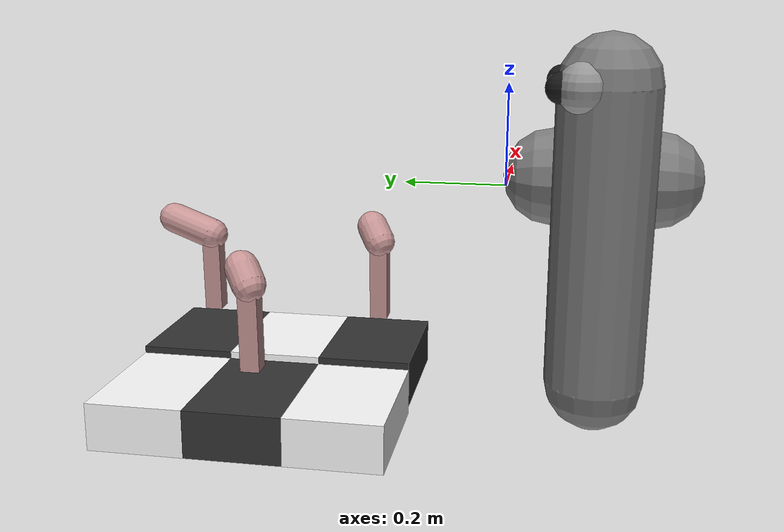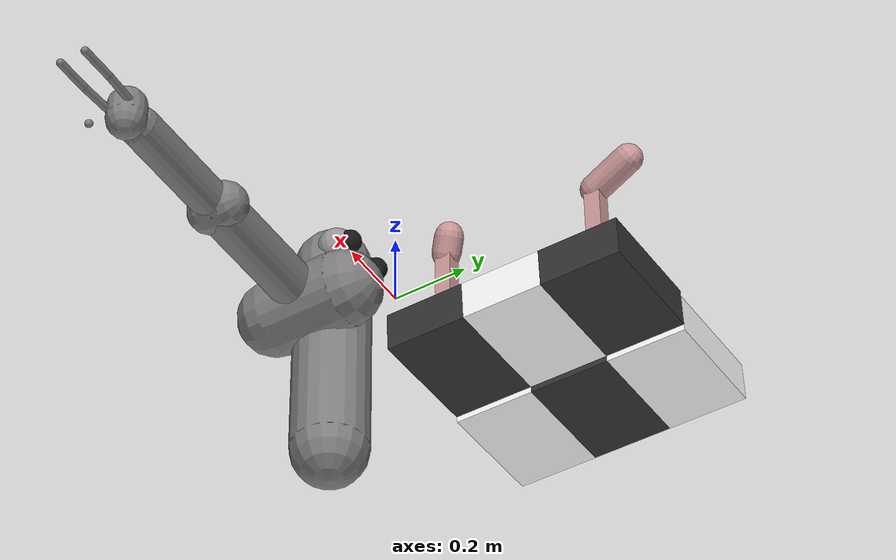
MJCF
<mujoco model="arm3d">

    <compiler inertiafromgeom="true" angle="radian" coordinate="local" />
    <option timestep="0.01" gravity="0 0 0" iterations="20" integrator="Euler" />
    <default>
        <joint armature="0.04" damping="1" limited="true" />
        <geom friction=".5 .1 .1" margin="0.002" condim="1" contype="0" conaffinity="0" />
    </default>

    <worldbody>
        <body name="r_shoulder_pan_link" pos="0 -0.188 0">
            <geom name="e1" type="sphere" rgba="0.6 0.6 0.6 1" pos="-0.06 0.05 0.2" size="0.05" />
            <geom name="e2" type="sphere" rgba="0.6 0.6 0.6 1" pos=" 0.06 0.05 0.2" size="0.05" />
            <geom name="e1p" type="sphere" rgba="0.1 0.1 0.1 1" pos="-0.06 0.09 0.2" size="0.03" />
            <geom name="e2p" type="sphere" rgba="0.1 0.1 0.1 1" pos=" 0.06 0.09 0.2" size="0.03" />
            <geom name="sp" type="capsule" fromto="0 0 -0.4 0 0 0.2" size="0.1" />
            <joint name="r_shoulder_pan_joint" type="hinge" pos="0 0 0" axis="0 0 1" range="-2.2854 1.714602" damping="10.0" />

            <body name="r_shoulder_lift_link" pos="0.1 0 0">
                <geom name="sl" type="capsule" fromto="0 -0.1 0 0 0.1 0" size="0.1" />
                <joint name="r_shoulder_lift_joint" type="hinge" pos="0 0 0" axis="0 1 0" range="-0.5236 1.3963" damping="10.0" />

                <body name="r_upper_arm_roll_link" pos="0 0 0">
                    <geom name="uar" type="capsule" fromto="-0.1 0 0 0.1 0 0" size="0.02" />
                    <joint name="r_upper_arm_roll_joint" type="hinge" pos="0 0 0" axis="1 0 0" range="-3.9 0.8" damping="0.1" />

                    <body name="r_upper_arm_link" pos="0 0 0">
                        <geom name="ua" type="capsule" fromto="0 0 0 0.4 0 0" size="0.06" />

                        <body name="r_elbow_flex_link" pos="0.4 0 0">
                            <geom name="ef" type="capsule" fromto="0 -0.02 0 0.0 0.02 0" size="0.06" />
                            <joint name="r_elbow_flex_joint" type="hinge" pos="0 0 0" axis="0 1 0" range="-2.3213 0" damping="1.0" />

                            <body name="r_forearm_roll_link" pos="0 0 0">
                                <geom name="fr" type="capsule" fromto="-0.1 0 0 0.1 0 0" size="0.02" />
                                <joint name="r_forearm_roll_joint" type="hinge" limited="false" pos="0 0 0" axis="1 0 0" damping=".1" />

                                <body name="r_forearm_link" pos="0 0 0">
                                    <geom name="fa" type="capsule" fromto="0 0 0 0.321 0 0" size="0.05" />

                                    <body name="r_wrist_flex_link" pos="0.321 0 0">
                                        <geom name="wf" type="capsule" fromto="0 -0.02 0 0 0.02 0" size="0.01" />
                                        <joint name="r_wrist_flex_joint" type="hinge" pos="0 0 0" axis="0 1 0" range="-2.094 0" damping=".1" />

                                        <body name="r_wrist_roll_link" pos="0 0 0">
                                            <geom name="wr" type="capsule" fromto="-0.02 0 0 0.02 0 0" size="0.01" />
                                            <joint name="r_wrist_roll_joint" type="hinge" pos="0 0 0" limited="false" axis="1 0 0" damping="0.1" />

                                            <body name="r_gripper_palm_link" pos="0 0 0">
                                                <geom name="pl" type="capsule" fromto="0.05 0 -0.02 0.05 0 0.02" size="0.05" />

                                                <body name="r_gripper_tool_frame" pos="0.18 0 0">
                                                    <site name="leg_bottom" pos="0 0 -0.15" size="0.01" />

                                                </body>

                                                <body name="r_gripper_l_finger_link" pos="0.07691 0.03 0">
                                                    <geom name="gf3" type="capsule" fromto="0 0 0 0.09137 0.00495 0" size="0.01" />

                                                    <body name="r_gripper_l_finger_tip_link" pos="0.09137 0.00495 0">
                                                        <geom name="gf4" type="capsule" fromto="0 0 0 0.09137 0.0 0" size="0.01" />
                                                    </body>
                                                </body>

                                                <body name="r_gripper_r_finger_link" pos="0.07691 -0.03 0">
                                                    <geom name="gf1" type="capsule" fromto="0 0 0 0.09137 -0.00495 0" size="0.01" />

                                                    <body name="r_gripper_r_finger_tip_link" pos="0.09137 -0.00495 0">
                                                        <geom name="gf2" type="capsule" fromto="0 0 0 0.09137 0.0 0" size="0.01" />
                                                    </body>
                                                </body>
                                            </body>
                                        </body>
                                    </body>
                                </body>
                            </body>
                        </body>
                    </body>
                </body>
            </body>
        </body>

        <body name="g1" pos="0.2 0.3 -0.47" axisangle="0 1 0 0.05">
            <geom name="g1" rgba="0.2 0.2 0.2 1" type="box" size="0.15 0.1 0.05" contype="1" conaffinity="1" />
        </body>

       <body name="g3" pos="-0.1 0.3 -0.47" axisangle="0 1 0 0.05">
            <geom name="g3" rgba="1.0 1.0 1.0 1" type="box" size="0.15 0.1 0.05" contype="1" conaffinity="1" />
        </body>

        <body name="g2" pos="0.2 0.5 -0.47" axisangle="0 1 0 0.05">
            <geom name="g2" rgba="1.0 1.0 1.0 1" type="box" size="0.15 0.1 0.05" contype="1" conaffinity="1" />
        </body>

        <body name="g4" pos="-0.1 0.5 -0.47" axisangle="0 1 0 0.05">
            <geom name="g4" rgba="0.2 0.2 0.2 1" type="box" size="0.15 0.1 0.05" contype="1" conaffinity="1" />
        </body>

       <body name="g5" pos="-0.1 0.7 -0.47" axisangle="0 1 0 0.05">
            <geom name="g5" rgba="1.0 1.0 1.0 1" type="box" size="0.15 0.1 0.05" contype="1" conaffinity="1" />
        </body>

        <body name="g6" pos="0.2 0.7 -0.47" axisangle="0 1 0 0.05">
            <geom name="g6" rgba="0.2 0.2 0.2 1" type="box" size="0.15 0.1 0.05" contype="1" conaffinity="1" />
        </body>

        <body name="pawn_1" pos="0.25 0.3 -0.30">
           <geom name="pawn_1" rgba="0.8 0.6 0.6 1" type="box" size="0.02 0.02 0.08" density="2000" contype="2" conaffinity="1" />
            <body name="pawn_1_head" pos="0 0 0.1">
              <geom name="pawn_1_head" rgba="0.8 0.6 0.6 1" type="capsule" fromto="0 0 0 0.02 0.02 0.03" size="0.035" />
            </body>
        </body>

         <body name="pawn_2" pos="-0.1 0.5 -0.30">
           <geom name="pawn_2" rgba="0.8 0.6 0.6 1" type="box" size="0.02 0.02 0.08" density="2000" contype="2" conaffinity="1" />
            <body name="pawn_2_head" pos="0 0 0.1">
              <geom name="pawn_2_head" rgba="0.8 0.6 0.6 1" type="capsule" fromto="0 0 0 0.02 0.02 0.03" size="0.035" />
            </body>
        </body>

        <body name="bishop_1" pos="0.25 0.7 -0.30">
           <geom name="bishop_1" rgba="0.8 0.6 0.6 1" type="box" size="0.02 0.02 0.08" density="2000" contype="2" conaffinity="1" />
            <body name="bishop_1_head" pos="0 0 0.1">
              <geom name="bishop_1_head" rgba="0.8 0.6 0.6 1" type="capsule" fromto="0 0 0 0.02 0.1 0.03" size="0.035" />
            </body>
        </body>

    </worldbody>

    <actuator>
        <motor joint="r_shoulder_pan_joint" ctrlrange="-100.0 100.0" ctrllimited="true" />
        <motor joint="r_shoulder_lift_joint" ctrlrange="-100.0 100.0" ctrllimited="true" />
        <motor joint="r_upper_arm_roll_joint" ctrlrange="-100.0 100.0" ctrllimited="true" />
        <motor joint="r_elbow_flex_joint" ctrlrange="-100.0 100.0" ctrllimited="true" />
        <motor joint="r_forearm_roll_joint" ctrlrange="-100.0 100.0" ctrllimited="true" />
        <motor joint="r_wrist_flex_joint" ctrlrange="-100.0 100.0" ctrllimited="true" />
        <motor joint="r_wrist_roll_joint" ctrlrange="-100.0 100.0" ctrllimited="true" />
    </actuator>

</mujoco>
